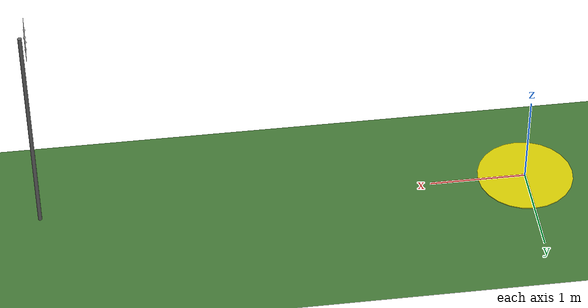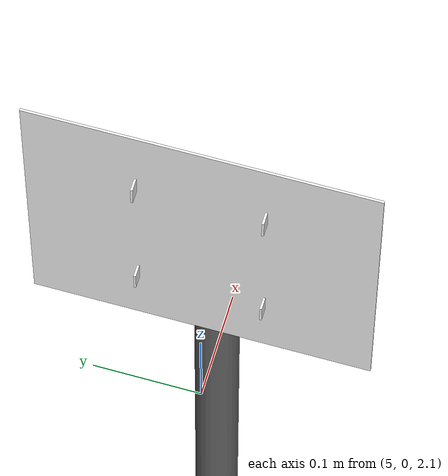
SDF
<?xml version="1.0"?>
<sdf version="1.9">
  <world name="drone_aruco_world">

    <!-- Physics tối ưu cho drone (DART solver, bước 4ms) -->
    <physics name="default_physics" default="true" type="dart">
      <max_step_size>0.004</max_step_size>
      <real_time_factor>1.0</real_time_factor>
    </physics>

    <!-- Scene: ánh sáng tốt cho ArUco detection -->
    <scene>
      <ambient>0.9 0.9 0.9 1.0</ambient>
      <background>0.6 0.7 0.9 1.0</background>
      <shadows>false</shadows>
    </scene>

    <!-- Ánh nắng chính -->
    <light type="directional" name="sun">
      <cast_shadows>false</cast_shadows>
      <pose>0 0 30 0 0 0</pose>
      <diffuse>1.0 1.0 1.0 1</diffuse>
      <specular>0.3 0.3 0.3 1</specular>
      <direction>0.1 0.0 -1</direction>
      <attenuation>
        <range>1000</range>
        <constant>0.9</constant>
        <linear>0.01</linear>
        <quadratic>0.001</quadratic>
      </attenuation>
    </light>

    <!-- Fill light bổ sung -->
    <light name="fill_light" type="directional">
      <pose>-5 -5 10 0 0 0</pose>
      <diffuse>0.7 0.7 0.7 1</diffuse>
      <specular>0.1 0.1 0.1 1</specular>
      <direction>0.5 0.5 -1</direction>
      <cast_shadows>false</cast_shadows>
    </light>

    <!-- Ground plane (50x50m, cỏ xanh) -->
    <model name="ground_plane">
      <static>true</static>
      <link name="link">
        <collision name="collision">
          <geometry>
            <plane><normal>0 0 1</normal><size>100 100</size></plane>
          </geometry>
        </collision>
        <visual name="visual">
          <geometry>
            <plane><normal>0 0 1</normal><size>100 100</size></plane>
          </geometry>
          <material>
            <ambient>0.25 0.45 0.20 1</ambient>
            <diffuse>0.25 0.45 0.20 1</diffuse>
          </material>
        </visual>
      </link>
    </model>

    <!-- Marker 0 — Top-Left của board -->
    <include>
      <uri>model://aruco_marker_0</uri>
      <name>marker_0</name>
      <pose>5.0  0.055  2.455  0 0 3.1416</pose>
    </include>

    <!-- Marker 1 — Top-Right -->
    <include>
      <uri>model://aruco_marker_1</uri>
      <name>marker_1</name>
      <pose>5.0 -0.055  2.455  0 0 3.1416</pose>
    </include>

    <!-- Marker 2 — Bottom-Right -->
    <include>
      <uri>model://aruco_marker_2</uri>
      <name>marker_2</name>
      <pose>5.0 -0.055  2.305  0 0 3.1416</pose>
    </include>

    <!-- Marker 3 — Bottom-Left -->
    <include>
      <uri>model://aruco_marker_3</uri>
      <name>marker_3</name>
      <pose>5.0  0.055  2.305  0 0 3.1416</pose>
    </include>

    <!-- Board trắng nền (200mm x 200mm) -->
    <model name="aruco_board_surface">
      <static>true</static>
      <pose>5.002 0 2.38 0 1.5708 0</pose>
      <link name="board_link">
        <visual name="board_visual">
          <geometry>
            <box><size>0.30 0.30 0.002</size></box>
          </geometry>
          <material>
            <ambient>0.97 0.97 0.97 1</ambient>
            <diffuse>0.97 0.97 0.97 1</diffuse>
            <specular>0.02 0.02 0.02 1</specular>
          </material>
        </visual>
        <collision name="board_collision">
          <geometry>
            <box><size>0.30 0.30 0.002</size></box>
          </geometry>
        </collision>
      </link>
    </model>

    <!-- Cột đỡ board (để board không bay) -->
    <model name="board_pole">
      <static>true</static>
      <pose>5.05 0 1.2 0 0 0</pose>
      <link name="pole_link">
        <visual name="pole_visual">
          <geometry>
            <cylinder><radius>0.02</radius><length>2.4</length></cylinder>
          </geometry>
          <material>
            <ambient>0.4 0.4 0.4 1</ambient>
            <diffuse>0.4 0.4 0.4 1</diffuse>
          </material>
        </visual>
        <collision name="pole_collision">
          <geometry>
            <cylinder><radius>0.02</radius><length>2.4</length></cylinder>
          </geometry>
        </collision>
      </link>
    </model>

    <!-- Vòng tròn đánh dấu vị trí takeoff của drone (x=0, y=0) -->
    <model name="takeoff_marker">
      <static>true</static>
      <pose>0 0 0.005 0 0 0</pose>
      <link name="marker_link">
        <visual name="circle_visual">
          <geometry>
            <cylinder><radius>0.5</radius><length>0.01</length></cylinder>
          </geometry>
          <material>
            <ambient>1.0 0.9 0.0 0.8</ambient>
            <diffuse>1.0 0.9 0.0 0.8</diffuse>
          </material>
        </visual>
      </link>
    </model>

    <!-- Trục tọa độ thế giới (debug) -->
    <model name="origin_frame">
      <static>true</static>
      <pose>0 0 0 0 0 0</pose>
      <!-- X axis: đỏ -->
      <link name="x_axis">
        <pose>0.5 0 0.005 0 1.5708 0</pose>
        <visual name="x_vis">
          <geometry><cylinder><radius>0.01</radius><length>1.0</length></cylinder></geometry>
          <material><ambient>1 0 0 1</ambient><diffuse>1 0 0 1</diffuse></material>
        </visual>
      </link>
      <!-- Y axis: xanh lá -->
      <link name="y_axis">
        <pose>0 0.5 0.005 1.5708 0 0</pose>
        <visual name="y_vis">
          <geometry><cylinder><radius>0.01</radius><length>1.0</length></cylinder></geometry>
          <material><ambient>0 1 0 1</ambient><diffuse>0 1 0 1</diffuse></material>
        </visual>
      </link>
    </model>

    <!-- Camera GUI: view từ phía drone, nhìn về board -->
    <gui fullscreen='false'>
      <camera name='user_camera'>
        <pose>-3 -2 4 0 0.4 0.4</pose>
        <view_controller>orbit</view_controller>
        <projection_type>perspective</projection_type>
      </camera>
    </gui>

  </world>
</sdf>

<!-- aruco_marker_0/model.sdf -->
<sdf version="1.8">
  <model name="aruco_marker_0">
    <static>true</static>
    <link name="marker_link">
      <visual name="marker_visual">
        <geometry>
          <box>
            <size>0.020 0.002 0.020</size>
          </box>
        </geometry>
        <material>
          <diffuse>1 1 1 1</diffuse>
          <specular>0.1 0.1 0.1 1</specular>
          <pbr>
            <metal>
              <albedo_map>model://aruco_marker_0/materials/textures/marker_0.png</albedo_map>
            </metal>
          </pbr>
        </material>
      </visual>
      <collision name="marker_collision">
        <geometry>
          <box>
            <size>0.020 0.002 0.020</size>
          </box>
        </geometry>
      </collision>
    </link>
  </model>
</sdf>

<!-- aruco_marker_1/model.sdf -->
<sdf version="1.8">
  <model name="aruco_marker_1">
    <static>true</static>
    <link name="marker_link">
      <visual name="marker_visual">
        <geometry>
          <box><size>0.020 0.002 0.020</size></box>
        </geometry>
        <material>
          <diffuse>1 1 1 1</diffuse>
          <specular>0.1 0.1 0.1 1</specular>
          <pbr>
            <metal>
              <albedo_map>model://aruco_marker_1/materials/textures/marker_1.png</albedo_map>
            </metal>
          </pbr>
        </material>
      </visual>
      <collision name="marker_collision">
        <geometry><box><size>0.020 0.002 0.020</size></box></geometry>
      </collision>
    </link>
  </model>
</sdf>

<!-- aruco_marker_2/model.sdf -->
<sdf version="1.8">
  <model name="aruco_marker_2">
    <static>true</static>
    <link name="marker_link">
      <visual name="marker_visual">
        <geometry>
          <box><size>0.020 0.002 0.020</size></box>
        </geometry>
        <material>
          <diffuse>1 1 1 1</diffuse>
          <specular>0.1 0.1 0.1 1</specular>
          <pbr>
            <metal>
              <albedo_map>model://aruco_marker_2/materials/textures/marker_2.png</albedo_map>
            </metal>
          </pbr>
        </material>
      </visual>
      <collision name="marker_collision">
        <geometry><box><size>0.020 0.002 0.020</size></box></geometry>
      </collision>
    </link>
  </model>
</sdf>

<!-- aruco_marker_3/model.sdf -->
<sdf version="1.8">
  <model name="aruco_marker_3">
    <static>true</static>
    <link name="marker_link">
      <visual name="marker_visual">
        <geometry>
          <box><size>0.020 0.002 0.020</size></box>
        </geometry>
        <material>
          <diffuse>1 1 1 1</diffuse>
          <specular>0.1 0.1 0.1 1</specular>
          <pbr>
            <metal>
              <albedo_map>model://aruco_marker_3/materials/textures/marker_3.png</albedo_map>
            </metal>
          </pbr>
        </material>
      </visual>
      <collision name="marker_collision">
        <geometry><box><size>0.020 0.002 0.020</size></box></geometry>
      </collision>
    </link>
  </model>
</sdf>
